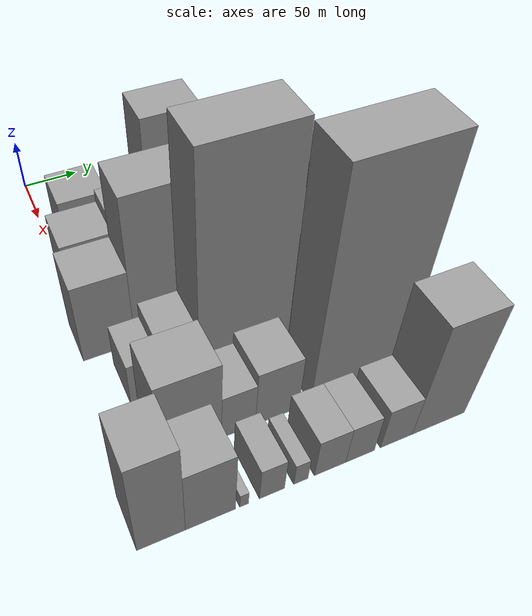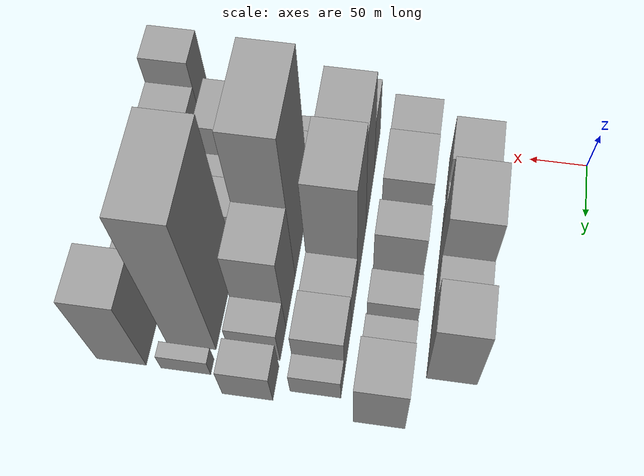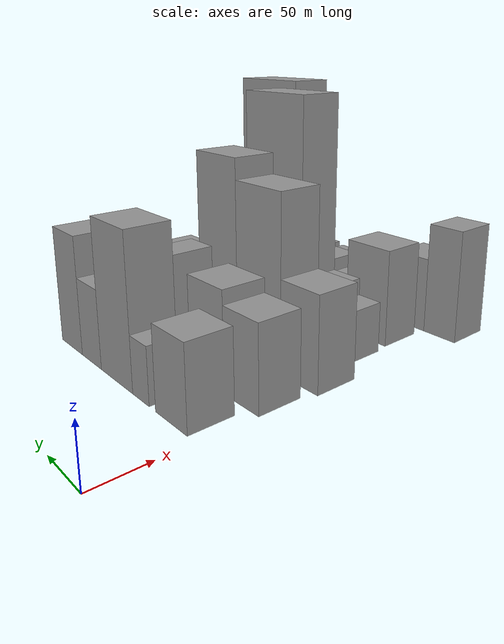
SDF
<sdf version="1.6">
 <world name="default">
  <model name="building_27">
   <static>1</static>
   <pose>100.0000 29.8711 0 0.000000 0.000000 0.000000</pose>
   <link name="link">
    <pose>0 0 34.50 0 0 0</pose>
    <collision name="collision"><geometry><box><size>40.0000 41.1020 69.0000</size></box></geometry></collision>
    <visual name="visual">
     <cast_shadows>0</cast_shadows>
     <geometry><box><size>40.0000 41.1020 69.0000</size></box></geometry>
     <material>
      <script>
       <uri>model://grey_wall/materials/scripts</uri>
       <uri>model://grey_wall/materials/textures</uri>
       <name>vrc/grey_wall</name>
      </script>
     </material>
    </visual>
   </link>
  </model>
  <model name="building_28">
   <static>1</static>
   <pose>100.0000 71.5119 0 0.000000 0.000000 0.000000</pose>
   <link name="link">
    <pose>0 0 24.00 0 0 0</pose>
    <collision name="collision"><geometry><box><size>40.0000 24.1797 48.0000</size></box></geometry></collision>
    <visual name="visual">
     <cast_shadows>0</cast_shadows>
     <geometry><box><size>40.0000 24.1797 48.0000</size></box></geometry>
     <material>
      <script>
       <uri>model://grey_wall/materials/scripts</uri>
       <uri>model://grey_wall/materials/textures</uri>
       <name>vrc/grey_wall</name>
      </script>
     </material>
    </visual>
   </link>
  </model>
  <model name="building_29">
   <static>1</static>
   <pose>100.0000 109.2819 0 0.000000 0.000000 0.000000</pose>
   <link name="link">
    <pose>0 0 64.50 0 0 0</pose>
    <collision name="collision"><geometry><box><size>40.0000 51.3603 129.0000</size></box></geometry></collision>
    <visual name="visual">
     <cast_shadows>0</cast_shadows>
     <geometry><box><size>40.0000 51.3603 129.0000</size></box></geometry>
     <material>
      <script>
       <uri>model://grey_wall/materials/scripts</uri>
       <uri>model://grey_wall/materials/textures</uri>
       <name>vrc/grey_wall</name>
      </script>
     </material>
    </visual>
   </link>
  </model>
  <model name="building_30">
   <static>1</static>
   <pose>100.0000 152.5103 0 0.000000 0.000000 0.000000</pose>
   <link name="link">
    <pose>0 0 34.50 0 0 0</pose>
    <collision name="collision"><geometry><box><size>40.0000 35.0965 69.0000</size></box></geometry></collision>
    <visual name="visual">
     <cast_shadows>0</cast_shadows>
     <geometry><box><size>40.0000 35.0965 69.0000</size></box></geometry>
     <material>
      <script>
       <uri>model://grey_wall/materials/scripts</uri>
       <uri>model://grey_wall/materials/textures</uri>
       <name>vrc/grey_wall</name>
      </script>
     </material>
    </visual>
   </link>
  </model>
  <model name="building_31">
   <static>1</static>
   <pose>100.0000 190.2256 0 0.000000 0.000000 0.000000</pose>
   <link name="link">
    <pose>0 0 52.50 0 0 0</pose>
    <collision name="collision"><geometry><box><size>40.0000 40.3340 105.0000</size></box></geometry></collision>
    <visual name="visual">
     <cast_shadows>0</cast_shadows>
     <geometry><box><size>40.0000 40.3340 105.0000</size></box></geometry>
     <material>
      <script>
       <uri>model://grey_wall/materials/scripts</uri>
       <uri>model://grey_wall/materials/textures</uri>
       <name>vrc/grey_wall</name>
      </script>
     </material>
    </visual>
   </link>
  </model>
  <model name="building_75">
   <static>1</static>
   <pose>152.0000 17.4830 0 0.000000 0.000000 0.000000</pose>
   <link name="link">
    <pose>0 0 36.00 0 0 0</pose>
    <collision name="collision"><geometry><box><size>40.0000 41.3475 72.0000</size></box></geometry></collision>
    <visual name="visual">
     <cast_shadows>0</cast_shadows>
     <geometry><box><size>40.0000 41.3475 72.0000</size></box></geometry>
     <material>
      <script>
       <uri>model://grey_wall/materials/scripts</uri>
       <uri>model://grey_wall/materials/textures</uri>
       <name>vrc/grey_wall</name>
      </script>
     </material>
    </visual>
   </link>
  </model>
  <model name="building_76">
   <static>1</static>
   <pose>152.0000 60.8642 0 0.000000 0.000000 0.000000</pose>
   <link name="link">
    <pose>0 0 42.00 0 0 0</pose>
    <collision name="collision"><geometry><box><size>40.0000 45.4149 84.0000</size></box></geometry></collision>
    <visual name="visual">
     <cast_shadows>0</cast_shadows>
     <geometry><box><size>40.0000 45.4149 84.0000</size></box></geometry>
     <material>
      <script>
       <uri>model://grey_wall/materials/scripts</uri>
       <uri>model://grey_wall/materials/textures</uri>
       <name>vrc/grey_wall</name>
      </script>
     </material>
    </visual>
   </link>
  </model>
  <model name="building_77">
   <static>1</static>
   <pose>152.0000 94.1889 0 0.000000 0.000000 0.000000</pose>
   <link name="link">
    <pose>0 0 12.00 0 0 0</pose>
    <collision name="collision"><geometry><box><size>40.0000 11.2345 24.0000</size></box></geometry></collision>
    <visual name="visual">
     <cast_shadows>0</cast_shadows>
     <geometry><box><size>40.0000 11.2345 24.0000</size></box></geometry>
     <material>
      <script>
       <uri>model://grey_wall/materials/scripts</uri>
       <uri>model://grey_wall/materials/textures</uri>
       <name>vrc/grey_wall</name>
      </script>
     </material>
    </visual>
   </link>
  </model>
  <model name="building_78">
   <static>1</static>
   <pose>152.0000 121.7195 0 0.000000 0.000000 0.000000</pose>
   <link name="link">
    <pose>0 0 46.50 0 0 0</pose>
    <collision name="collision"><geometry><box><size>40.0000 29.8268 93.0000</size></box></geometry></collision>
    <visual name="visual">
     <cast_shadows>0</cast_shadows>
     <geometry><box><size>40.0000 29.8268 93.0000</size></box></geometry>
     <material>
      <script>
       <uri>model://grey_wall/materials/scripts</uri>
       <uri>model://grey_wall/materials/textures</uri>
       <name>vrc/grey_wall</name>
      </script>
     </material>
    </visual>
   </link>
  </model>
  <model name="building_79">
   <static>1</static>
   <pose>152.0000 160.8110 0 0.000000 0.000000 0.000000</pose>
   <link name="link">
    <pose>0 0 27.00 0 0 0</pose>
    <collision name="collision"><geometry><box><size>40.0000 28.3562 54.0000</size></box></geometry></collision>
    <visual name="visual">
     <cast_shadows>0</cast_shadows>
     <geometry><box><size>40.0000 28.3562 54.0000</size></box></geometry>
     <material>
      <script>
       <uri>model://grey_wall/materials/scripts</uri>
       <uri>model://grey_wall/materials/textures</uri>
       <name>vrc/grey_wall</name>
      </script>
     </material>
    </visual>
   </link>
  </model>
  <model name="building_80">
   <static>1</static>
   <pose>152.0000 197.2991 0 0.000000 0.000000 0.000000</pose>
   <link name="link">
    <pose>0 0 25.50 0 0 0</pose>
    <collision name="collision"><geometry><box><size>40.0000 28.6200 51.0000</size></box></geometry></collision>
    <visual name="visual">
     <cast_shadows>0</cast_shadows>
     <geometry><box><size>40.0000 28.6200 51.0000</size></box></geometry>
     <material>
      <script>
       <uri>model://grey_wall/materials/scripts</uri>
       <uri>model://grey_wall/materials/textures</uri>
       <name>vrc/grey_wall</name>
      </script>
     </material>
    </visual>
   </link>
  </model>
  <model name="building_81">
   <static>1</static>
   <pose>152.0000 232.0442 0 0.000000 0.000000 0.000000</pose>
   <link name="link">
    <pose>0 0 40.50 0 0 0</pose>
    <collision name="collision"><geometry><box><size>40.0000 40.8701 81.0000</size></box></geometry></collision>
    <visual name="visual">
     <cast_shadows>0</cast_shadows>
     <geometry><box><size>40.0000 40.8701 81.0000</size></box></geometry>
     <material>
      <script>
       <uri>model://grey_wall/materials/scripts</uri>
       <uri>model://grey_wall/materials/textures</uri>
       <name>vrc/grey_wall</name>
      </script>
     </material>
    </visual>
   </link>
  </model>
  <model name="building_129">
   <static>1</static>
   <pose>204.0000 11.7722 0 0.000000 0.000000 0.000000</pose>
   <link name="link">
    <pose>0 0 40.50 0 0 0</pose>
    <collision name="collision"><geometry><box><size>40.0000 42.4283 81.0000</size></box></geometry></collision>
    <visual name="visual">
     <cast_shadows>0</cast_shadows>
     <geometry><box><size>40.0000 42.4283 81.0000</size></box></geometry>
     <material>
      <script>
       <uri>model://grey_wall/materials/scripts</uri>
       <uri>model://grey_wall/materials/textures</uri>
       <name>vrc/grey_wall</name>
      </script>
     </material>
    </visual>
   </link>
  </model>
  <model name="building_130">
   <static>1</static>
   <pose>204.0000 60.9299 0 0.000000 0.000000 0.000000</pose>
   <link name="link">
    <pose>0 0 75.00 0 0 0</pose>
    <collision name="collision"><geometry><box><size>40.0000 55.8872 150.0000</size></box></geometry></collision>
    <visual name="visual">
     <cast_shadows>0</cast_shadows>
     <geometry><box><size>40.0000 55.8872 150.0000</size></box></geometry>
     <material>
      <script>
       <uri>model://grey_wall/materials/scripts</uri>
       <uri>model://grey_wall/materials/textures</uri>
       <name>vrc/grey_wall</name>
      </script>
     </material>
    </visual>
   </link>
  </model>
  <model name="building_131">
   <static>1</static>
   <pose>204.0000 115.9007 0 0.000000 0.000000 0.000000</pose>
   <link name="link">
    <pose>0 0 84.00 0 0 0</pose>
    <collision name="collision"><geometry><box><size>40.0000 54.0545 168.0000</size></box></geometry></collision>
    <visual name="visual">
     <cast_shadows>0</cast_shadows>
     <geometry><box><size>40.0000 54.0545 168.0000</size></box></geometry>
     <material>
      <script>
       <uri>model://grey_wall/materials/scripts</uri>
       <uri>model://grey_wall/materials/textures</uri>
       <name>vrc/grey_wall</name>
      </script>
     </material>
    </visual>
   </link>
  </model>
  <model name="building_132">
   <static>1</static>
   <pose>204.0000 160.6650 0 0.000000 0.000000 0.000000</pose>
   <link name="link">
    <pose>0 0 30.00 0 0 0</pose>
    <collision name="collision"><geometry><box><size>40.0000 35.4740 60.0000</size></box></geometry></collision>
    <visual name="visual">
     <cast_shadows>0</cast_shadows>
     <geometry><box><size>40.0000 35.4740 60.0000</size></box></geometry>
     <material>
      <script>
       <uri>model://grey_wall/materials/scripts</uri>
       <uri>model://grey_wall/materials/textures</uri>
       <name>vrc/grey_wall</name>
      </script>
     </material>
    </visual>
   </link>
  </model>
  <model name="building_133">
   <static>1</static>
   <pose>204.0000 197.5146 0 0.000000 0.000000 0.000000</pose>
   <link name="link">
    <pose>0 0 34.50 0 0 0</pose>
    <collision name="collision"><geometry><box><size>40.0000 38.2251 69.0000</size></box></geometry></collision>
    <visual name="visual">
     <cast_shadows>0</cast_shadows>
     <geometry><box><size>40.0000 38.2251 69.0000</size></box></geometry>
     <material>
      <script>
       <uri>model://grey_wall/materials/scripts</uri>
       <uri>model://grey_wall/materials/textures</uri>
       <name>vrc/grey_wall</name>
      </script>
     </material>
    </visual>
   </link>
  </model>
  <model name="building_134">
   <static>1</static>
   <pose>204.0000 226.0405 0 0.000000 0.000000 0.000000</pose>
   <link name="link">
    <pose>0 0 18.00 0 0 0</pose>
    <collision name="collision"><geometry><box><size>40.0000 18.8268 36.0000</size></box></geometry></collision>
    <visual name="visual">
     <cast_shadows>0</cast_shadows>
     <geometry><box><size>40.0000 18.8268 36.0000</size></box></geometry>
     <material>
      <script>
       <uri>model://grey_wall/materials/scripts</uri>
       <uri>model://grey_wall/materials/textures</uri>
       <name>vrc/grey_wall</name>
      </script>
     </material>
    </visual>
   </link>
  </model>
  <model name="building_183">
   <static>1</static>
   <pose>256.0000 22.9023 0 0.000000 0.000000 0.000000</pose>
   <link name="link">
    <pose>0 0 22.50 0 0 0</pose>
    <collision name="collision"><geometry><box><size>40.0000 23.8626 45.0000</size></box></geometry></collision>
    <visual name="visual">
     <cast_shadows>0</cast_shadows>
     <geometry><box><size>40.0000 23.8626 45.0000</size></box></geometry>
     <material>
      <script>
       <uri>model://grey_wall/materials/scripts</uri>
       <uri>model://grey_wall/materials/textures</uri>
       <name>vrc/grey_wall</name>
      </script>
     </material>
    </visual>
   </link>
  </model>
  <model name="building_184">
   <static>1</static>
   <pose>256.0000 50.1579 0 0.000000 0.000000 0.000000</pose>
   <link name="link">
    <pose>0 0 30.00 0 0 0</pose>
    <collision name="collision"><geometry><box><size>40.0000 30.6486 60.0000</size></box></geometry></collision>
    <visual name="visual">
     <cast_shadows>0</cast_shadows>
     <geometry><box><size>40.0000 30.6486 60.0000</size></box></geometry>
     <material>
      <script>
       <uri>model://grey_wall/materials/scripts</uri>
       <uri>model://grey_wall/materials/textures</uri>
       <name>vrc/grey_wall</name>
      </script>
     </material>
    </visual>
   </link>
  </model>
  <model name="building_185">
   <static>1</static>
   <pose>256.0000 102.4552 0 0.000000 0.000000 0.000000</pose>
   <link name="link">
    <pose>0 0 108.00 0 0 0</pose>
    <collision name="collision"><geometry><box><size>40.0000 73.9461 216.0000</size></box></geometry></collision>
    <visual name="visual">
     <cast_shadows>0</cast_shadows>
     <geometry><box><size>40.0000 73.9461 216.0000</size></box></geometry>
     <material>
      <script>
       <uri>model://grey_wall/materials/scripts</uri>
       <uri>model://grey_wall/materials/textures</uri>
       <name>vrc/grey_wall</name>
      </script>
     </material>
    </visual>
   </link>
  </model>
  <model name="building_186">
   <static>1</static>
   <pose>256.0000 161.9190 0 0.000000 0.000000 0.000000</pose>
   <link name="link">
    <pose>0 0 61.50 0 0 0</pose>
    <collision name="collision"><geometry><box><size>40.0000 44.9815 123.0000</size></box></geometry></collision>
    <visual name="visual">
     <cast_shadows>0</cast_shadows>
     <geometry><box><size>40.0000 44.9815 123.0000</size></box></geometry>
     <material>
      <script>
       <uri>model://grey_wall/materials/scripts</uri>
       <uri>model://grey_wall/materials/textures</uri>
       <name>vrc/grey_wall</name>
      </script>
     </material>
    </visual>
   </link>
  </model>
  <model name="building_187">
   <static>1</static>
   <pose>256.0000 198.1833 0 0.000000 0.000000 0.000000</pose>
   <link name="link">
    <pose>0 0 27.00 0 0 0</pose>
    <collision name="collision"><geometry><box><size>40.0000 27.5471 54.0000</size></box></geometry></collision>
    <visual name="visual">
     <cast_shadows>0</cast_shadows>
     <geometry><box><size>40.0000 27.5471 54.0000</size></box></geometry>
     <material>
      <script>
       <uri>model://grey_wall/materials/scripts</uri>
       <uri>model://grey_wall/materials/textures</uri>
       <name>vrc/grey_wall</name>
      </script>
     </material>
    </visual>
   </link>
  </model>
  <model name="building_188">
   <static>1</static>
   <pose>256.0000 230.7472 0 0.000000 0.000000 0.000000</pose>
   <link name="link">
    <pose>0 0 25.50 0 0 0</pose>
    <collision name="collision"><geometry><box><size>40.0000 27.5808 51.0000</size></box></geometry></collision>
    <visual name="visual">
     <cast_shadows>0</cast_shadows>
     <geometry><box><size>40.0000 27.5808 51.0000</size></box></geometry>
     <material>
      <script>
       <uri>model://grey_wall/materials/scripts</uri>
       <uri>model://grey_wall/materials/textures</uri>
       <name>vrc/grey_wall</name>
      </script>
     </material>
    </visual>
   </link>
  </model>
  <model name="building_231">
   <static>1</static>
   <pose>308.0000 36.8905 0 0.000000 0.000000 0.000000</pose>
   <link name="link">
    <pose>0 0 43.50 0 0 0</pose>
    <collision name="collision"><geometry><box><size>40.0000 46.9438 87.0000</size></box></geometry></collision>
    <visual name="visual">
     <cast_shadows>0</cast_shadows>
     <geometry><box><size>40.0000 46.9438 87.0000</size></box></geometry>
     <material>
      <script>
       <uri>model://grey_wall/materials/scripts</uri>
       <uri>model://grey_wall/materials/textures</uri>
       <name>vrc/grey_wall</name>
      </script>
     </material>
    </visual>
   </link>
  </model>
  <model name="building_232">
   <static>1</static>
   <pose>308.0000 73.6166 0 0.000000 0.000000 0.000000</pose>
   <link name="link">
    <pose>0 0 24.00 0 0 0</pose>
    <collision name="collision"><geometry><box><size>40.0000 26.5083 48.0000</size></box></geometry></collision>
    <visual name="visual">
     <cast_shadows>0</cast_shadows>
     <geometry><box><size>40.0000 26.5083 48.0000</size></box></geometry>
     <material>
      <script>
       <uri>model://grey_wall/materials/scripts</uri>
       <uri>model://grey_wall/materials/textures</uri>
       <name>vrc/grey_wall</name>
      </script>
     </material>
    </visual>
   </link>
  </model>
  <model name="building_233">
   <static>1</static>
   <pose>308.0000 104.3659 0 0.000000 0.000000 0.000000</pose>
   <link name="link">
    <pose>0 0 30.00 0 0 0</pose>
    <collision name="collision"><geometry><box><size>40.0000 34.9903 60.0000</size></box></geometry></collision>
    <visual name="visual">
     <cast_shadows>0</cast_shadows>
     <geometry><box><size>40.0000 34.9903 60.0000</size></box></geometry>
     <material>
      <script>
       <uri>model://grey_wall/materials/scripts</uri>
       <uri>model://grey_wall/materials/textures</uri>
       <name>vrc/grey_wall</name>
      </script>
     </material>
    </visual>
   </link>
  </model>
  <model name="building_234">
   <static>1</static>
   <pose>308.0000 170.9945 0 0.000000 0.000000 0.000000</pose>
   <link name="link">
    <pose>0 0 111.00 0 0 0</pose>
    <collision name="collision"><geometry><box><size>40.0000 78.2668 222.0000</size></box></geometry></collision>
    <visual name="visual">
     <cast_shadows>0</cast_shadows>
     <geometry><box><size>40.0000 78.2668 222.0000</size></box></geometry>
     <material>
      <script>
       <uri>model://grey_wall/materials/scripts</uri>
       <uri>model://grey_wall/materials/textures</uri>
       <name>vrc/grey_wall</name>
      </script>
     </material>
    </visual>
   </link>
  </model>
  <model name="building_235">
   <static>1</static>
   <pose>308.0000 224.4648 0 0.000000 0.000000 0.000000</pose>
   <link name="link">
    <pose>0 0 13.50 0 0 0</pose>
    <collision name="collision"><geometry><box><size>40.0000 12.6738 27.0000</size></box></geometry></collision>
    <visual name="visual">
     <cast_shadows>0</cast_shadows>
     <geometry><box><size>40.0000 12.6738 27.0000</size></box></geometry>
     <material>
      <script>
       <uri>model://grey_wall/materials/scripts</uri>
       <uri>model://grey_wall/materials/textures</uri>
       <name>vrc/grey_wall</name>
      </script>
     </material>
    </visual>
   </link>
  </model>
  <model name="building_278">
   <static>1</static>
   <pose>360.0000 -5.1299 0 0.000000 0.000000 0.000000</pose>
   <link name="link">
    <pose>0 0 51.00 0 0 0</pose>
    <collision name="collision"><geometry><box><size>40.0000 33.3459 102.0000</size></box></geometry></collision>
    <visual name="visual">
     <cast_shadows>0</cast_shadows>
     <geometry><box><size>40.0000 33.3459 102.0000</size></box></geometry>
     <material>
      <script>
       <uri>model://grey_wall/materials/scripts</uri>
       <uri>model://grey_wall/materials/textures</uri>
       <name>vrc/grey_wall</name>
      </script>
     </material>
    </visual>
   </link>
  </model>
  <model name="building_279">
   <static>1</static>
   <pose>360.0000 29.3370 0 0.000000 0.000000 0.000000</pose>
   <link name="link">
    <pose>0 0 34.50 0 0 0</pose>
    <collision name="collision"><geometry><box><size>40.0000 35.5880 69.0000</size></box></geometry></collision>
    <visual name="visual">
     <cast_shadows>0</cast_shadows>
     <geometry><box><size>40.0000 35.5880 69.0000</size></box></geometry>
     <material>
      <script>
       <uri>model://grey_wall/materials/scripts</uri>
       <uri>model://grey_wall/materials/textures</uri>
       <name>vrc/grey_wall</name>
      </script>
     </material>
    </visual>
   </link>
  </model>
  <model name="building_280">
   <static>1</static>
   <pose>360.0000 53.3553 0 0.000000 0.000000 0.000000</pose>
   <link name="link">
    <pose>0 0 7.50 0 0 0</pose>
    <collision name="collision"><geometry><box><size>40.0000 6.4486 15.0000</size></box></geometry></collision>
    <visual name="visual">
     <cast_shadows>0</cast_shadows>
     <geometry><box><size>40.0000 6.4486 15.0000</size></box></geometry>
     <material>
      <script>
       <uri>model://grey_wall/materials/scripts</uri>
       <uri>model://grey_wall/materials/textures</uri>
       <name>vrc/grey_wall</name>
      </script>
     </material>
    </visual>
   </link>
  </model>
  <model name="building_281">
   <static>1</static>
   <pose>360.0000 73.9424 0 0.000000 0.000000 0.000000</pose>
   <link name="link">
    <pose>0 0 18.00 0 0 0</pose>
    <collision name="collision"><geometry><box><size>40.0000 18.7256 36.0000</size></box></geometry></collision>
    <visual name="visual">
     <cast_shadows>0</cast_shadows>
     <geometry><box><size>40.0000 18.7256 36.0000</size></box></geometry>
     <material>
      <script>
       <uri>model://grey_wall/materials/scripts</uri>
       <uri>model://grey_wall/materials/textures</uri>
       <name>vrc/grey_wall</name>
      </script>
     </material>
    </visual>
   </link>
  </model>
  <model name="building_282">
   <static>1</static>
   <pose>360.0000 95.7412 0 0.000000 0.000000 0.000000</pose>
   <link name="link">
    <pose>0 0 12.00 0 0 0</pose>
    <collision name="collision"><geometry><box><size>40.0000 10.8722 24.0000</size></box></geometry></collision>
    <visual name="visual">
     <cast_shadows>0</cast_shadows>
     <geometry><box><size>40.0000 10.8722 24.0000</size></box></geometry>
     <material>
      <script>
       <uri>model://grey_wall/materials/scripts</uri>
       <uri>model://grey_wall/materials/textures</uri>
       <name>vrc/grey_wall</name>
      </script>
     </material>
    </visual>
   </link>
  </model>
  <model name="building_283">
   <static>1</static>
   <pose>360.0000 118.4891 0 0.000000 0.000000 0.000000</pose>
   <link name="link">
    <pose>0 0 21.00 0 0 0</pose>
    <collision name="collision"><geometry><box><size>40.0000 24.6236 42.0000</size></box></geometry></collision>
    <visual name="visual">
     <cast_shadows>0</cast_shadows>
     <geometry><box><size>40.0000 24.6236 42.0000</size></box></geometry>
     <material>
      <script>
       <uri>model://grey_wall/materials/scripts</uri>
       <uri>model://grey_wall/materials/textures</uri>
       <name>vrc/grey_wall</name>
      </script>
     </material>
    </visual>
   </link>
  </model>
  <model name="building_284">
   <static>1</static>
   <pose>360.0000 142.3511 0 0.000000 0.000000 0.000000</pose>
   <link name="link">
    <pose>0 0 21.00 0 0 0</pose>
    <collision name="collision"><geometry><box><size>40.0000 23.1005 42.0000</size></box></geometry></collision>
    <visual name="visual">
     <cast_shadows>0</cast_shadows>
     <geometry><box><size>40.0000 23.1005 42.0000</size></box></geometry>
     <material>
      <script>
       <uri>model://grey_wall/materials/scripts</uri>
       <uri>model://grey_wall/materials/textures</uri>
       <name>vrc/grey_wall</name>
      </script>
     </material>
    </visual>
   </link>
  </model>
  <model name="building_285">
   <static>1</static>
   <pose>360.0000 172.1405 0 0.000000 0.000000 0.000000</pose>
   <link name="link">
    <pose>0 0 22.50 0 0 0</pose>
    <collision name="collision"><geometry><box><size>40.0000 26.4784 45.0000</size></box></geometry></collision>
    <visual name="visual">
     <cast_shadows>0</cast_shadows>
     <geometry><box><size>40.0000 26.4784 45.0000</size></box></geometry>
     <material>
      <script>
       <uri>model://grey_wall/materials/scripts</uri>
       <uri>model://grey_wall/materials/textures</uri>
       <name>vrc/grey_wall</name>
      </script>
     </material>
    </visual>
   </link>
  </model>
  <model name="building_286">
   <static>1</static>
   <pose>360.0000 207.8466 0 0.000000 0.000000 0.000000</pose>
   <link name="link">
    <pose>0 0 60.00 0 0 0</pose>
    <collision name="collision"><geometry><box><size>40.0000 44.9338 120.0000</size></box></geometry></collision>
    <visual name="visual">
     <cast_shadows>0</cast_shadows>
     <geometry><box><size>40.0000 44.9338 120.0000</size></box></geometry>
     <material>
      <script>
       <uri>model://grey_wall/materials/scripts</uri>
       <uri>model://grey_wall/materials/textures</uri>
       <name>vrc/grey_wall</name>
      </script>
     </material>
    </visual>
   </link>
  </model>
 </world>
</sdf>
